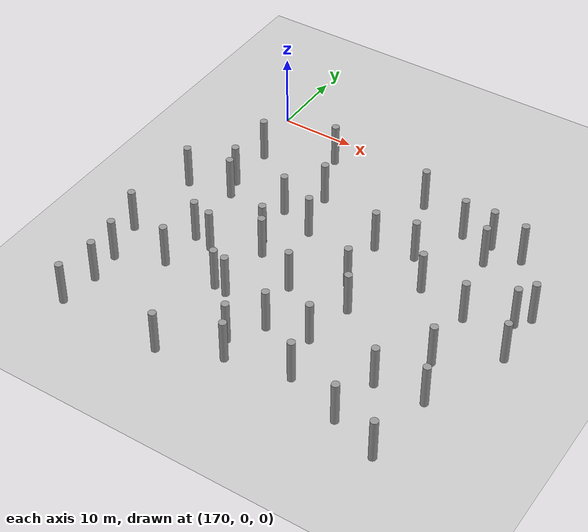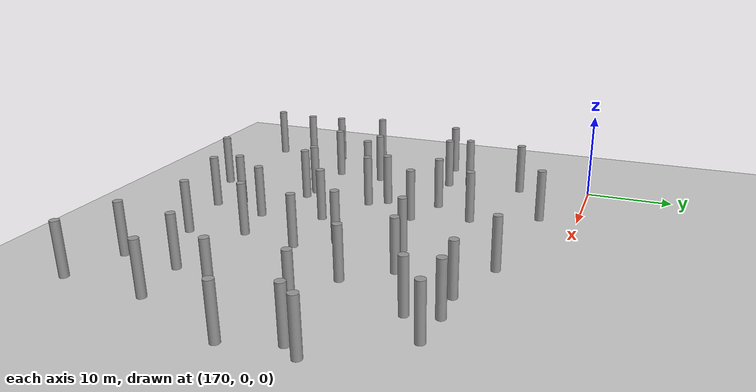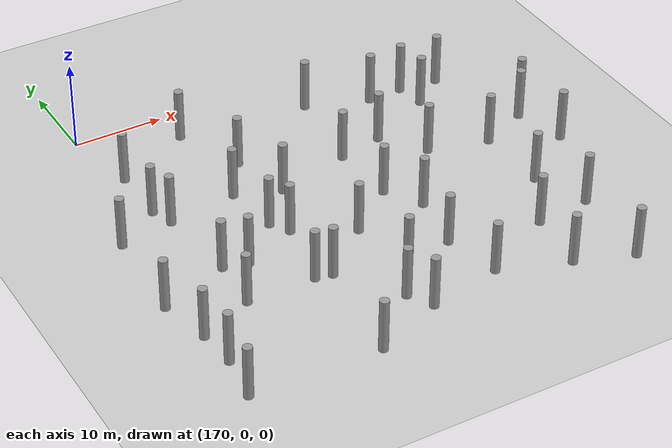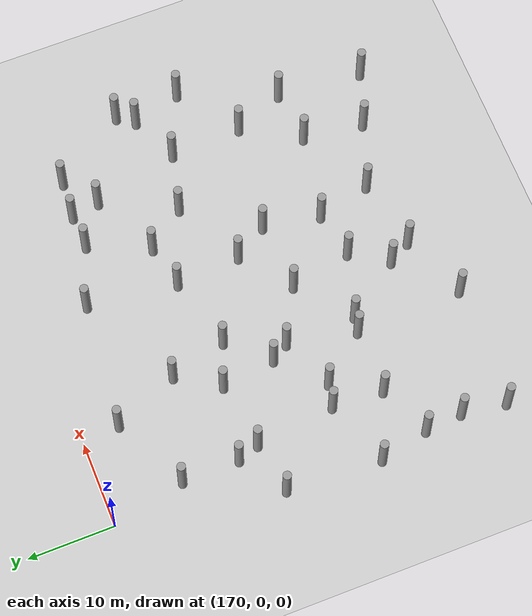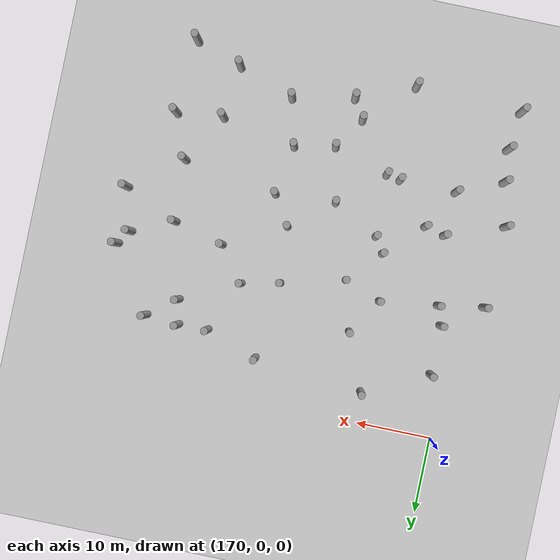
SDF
<sdf version="1.5">
 <world name="circle">
  <model name="ground">
   <static>1</static>
   <link name="link">
    <collision name="collision">
     <geometry><plane><normal>0 0 1</normal><size>100 100</size></plane></geometry>
     <surface><friction><ode><mu>100</mu><mu2>50</mu2></ode></friction></surface>
    </collision>
    <visual name="visual">
     <cast_shadows>0</cast_shadows>
     <geometry><plane><normal>0 0 1</normal><size>100 100</size></plane></geometry>
     <material>
      <script><uri>file://media/materials/scripts/gazebo.material</uri><name>Gazebo/Grey</name></script>
     </material>
    </visual>
    <velocity_decay><linear>0</linear><angular>0</angular></velocity_decay>
   </link>
  </model>
  <model name="unit_cylinder_264">
   <pose>167.184352577 -44.6945361858 3 3e-06 4e-06 -0</pose>
   <static>1</static>
   <self_collide>1</self_collide>
   <link name="link">
    <inertial>
     <mass>1</mass>
     <inertia><ixx>0.145833</ixx><ixy>0</ixy><ixz>0</ixz><iyy>0.145833</iyy><iyz>0</iyz><izz>0.125</izz></inertia>
    </inertial>
    <collision name="collision">
     <geometry><cylinder><radius>0.5</radius><length>6</length></cylinder></geometry>
    </collision>
    <visual name="visual">
     <geometry><cylinder><radius>0.5</radius><length>6</length></cylinder></geometry>
     <material>
      <script><name>Gazebo/Grey</name><uri>file://media/materials/scripts/gazebo.material</uri></script>
     </material>
    </visual>
    <collision name="cyl_collision">
     <geometry><cylinder><radius>0.5</radius><length>6</length></cylinder></geometry>
    </collision>
    <sensor name="my_contact" type="contact">
     <contact><collision>cyl_collision</collision></contact>
     <update_rate>5</update_rate>
    </sensor>
   </link>
  </model>
  <model name="unit_cylinder_265">
   <pose>167.48198191 -35.2077223789 3 3e-06 4e-06 -0</pose>
   <static>1</static>
   <self_collide>1</self_collide>
   <link name="link">
    <inertial>
     <mass>1</mass>
     <inertia><ixx>0.145833</ixx><ixy>0</ixy><ixz>0</ixz><iyy>0.145833</iyy><iyz>0</iyz><izz>0.125</izz></inertia>
    </inertial>
    <collision name="collision">
     <geometry><cylinder><radius>0.5</radius><length>6</length></cylinder></geometry>
    </collision>
    <visual name="visual">
     <geometry><cylinder><radius>0.5</radius><length>6</length></cylinder></geometry>
     <material>
      <script><name>Gazebo/Grey</name><uri>file://media/materials/scripts/gazebo.material</uri></script>
     </material>
    </visual>
    <collision name="cyl_collision">
     <geometry><cylinder><radius>0.5</radius><length>6</length></cylinder></geometry>
    </collision>
    <sensor name="my_contact" type="contact">
     <contact><collision>cyl_collision</collision></contact>
     <update_rate>5</update_rate>
    </sensor>
   </link>
  </model>
  <model name="unit_cylinder_266">
   <pose>166.164467386 -29.491058813 3 3e-06 4e-06 -0</pose>
   <static>1</static>
   <self_collide>1</self_collide>
   <link name="link">
    <inertial>
     <mass>1</mass>
     <inertia><ixx>0.145833</ixx><ixy>0</ixy><ixz>0</ixz><iyy>0.145833</iyy><iyz>0</iyz><izz>0.125</izz></inertia>
    </inertial>
    <collision name="collision">
     <geometry><cylinder><radius>0.5</radius><length>6</length></cylinder></geometry>
    </collision>
    <visual name="visual">
     <geometry><cylinder><radius>0.5</radius><length>6</length></cylinder></geometry>
     <material>
      <script><name>Gazebo/Grey</name><uri>file://media/materials/scripts/gazebo.material</uri></script>
     </material>
    </visual>
    <collision name="cyl_collision">
     <geometry><cylinder><radius>0.5</radius><length>6</length></cylinder></geometry>
    </collision>
    <sensor name="my_contact" type="contact">
     <contact><collision>cyl_collision</collision></contact>
     <update_rate>5</update_rate>
    </sensor>
   </link>
  </model>
  <model name="unit_cylinder_267">
   <pose>166.73927139 -18.5321926992 3 3e-06 4e-06 -0</pose>
   <static>1</static>
   <self_collide>1</self_collide>
   <link name="link">
    <inertial>
     <mass>1</mass>
     <inertia><ixx>0.145833</ixx><ixy>0</ixy><ixz>0</ixz><iyy>0.145833</iyy><iyz>0</iyz><izz>0.125</izz></inertia>
    </inertial>
    <collision name="collision">
     <geometry><cylinder><radius>0.5</radius><length>6</length></cylinder></geometry>
    </collision>
    <visual name="visual">
     <geometry><cylinder><radius>0.5</radius><length>6</length></cylinder></geometry>
     <material>
      <script><name>Gazebo/Grey</name><uri>file://media/materials/scripts/gazebo.material</uri></script>
     </material>
    </visual>
    <collision name="cyl_collision">
     <geometry><cylinder><radius>0.5</radius><length>6</length></cylinder></geometry>
    </collision>
    <sensor name="my_contact" type="contact">
     <contact><collision>cyl_collision</collision></contact>
     <update_rate>5</update_rate>
    </sensor>
   </link>
  </model>
  <model name="unit_cylinder_276">
   <pose>167.882365494 -39.5463847399 3 3e-06 4e-06 -0</pose>
   <static>1</static>
   <self_collide>1</self_collide>
   <link name="link">
    <inertial>
     <mass>1</mass>
     <inertia><ixx>0.145833</ixx><ixy>0</ixy><ixz>0</ixz><iyy>0.145833</iyy><iyz>0</iyz><izz>0.125</izz></inertia>
    </inertial>
    <collision name="collision">
     <geometry><cylinder><radius>0.5</radius><length>6</length></cylinder></geometry>
    </collision>
    <visual name="visual">
     <geometry><cylinder><radius>0.5</radius><length>6</length></cylinder></geometry>
     <material>
      <script><name>Gazebo/Grey</name><uri>file://media/materials/scripts/gazebo.material</uri></script>
     </material>
    </visual>
    <collision name="cyl_collision">
     <geometry><cylinder><radius>0.5</radius><length>6</length></cylinder></geometry>
    </collision>
    <sensor name="my_contact" type="contact">
     <contact><collision>cyl_collision</collision></contact>
     <update_rate>5</update_rate>
    </sensor>
   </link>
  </model>
  <model name="unit_cylinder_277">
   <pose>173.455146939 -32.6401161237 3 3e-06 4e-06 -0</pose>
   <static>1</static>
   <self_collide>1</self_collide>
   <link name="link">
    <inertial>
     <mass>1</mass>
     <inertia><ixx>0.145833</ixx><ixy>0</ixy><ixz>0</ixz><iyy>0.145833</iyy><iyz>0</iyz><izz>0.125</izz></inertia>
    </inertial>
    <collision name="collision">
     <geometry><cylinder><radius>0.5</radius><length>6</length></cylinder></geometry>
    </collision>
    <visual name="visual">
     <geometry><cylinder><radius>0.5</radius><length>6</length></cylinder></geometry>
     <material>
      <script><name>Gazebo/Grey</name><uri>file://media/materials/scripts/gazebo.material</uri></script>
     </material>
    </visual>
    <collision name="cyl_collision">
     <geometry><cylinder><radius>0.5</radius><length>6</length></cylinder></geometry>
    </collision>
    <sensor name="my_contact" type="contact">
     <contact><collision>cyl_collision</collision></contact>
     <update_rate>5</update_rate>
    </sensor>
   </link>
  </model>
  <model name="unit_cylinder_278">
   <pose>173.808090417 -26.7433858936 3 3e-06 4e-06 -0</pose>
   <static>1</static>
   <self_collide>1</self_collide>
   <link name="link">
    <inertial>
     <mass>1</mass>
     <inertia><ixx>0.145833</ixx><ixy>0</ixy><ixz>0</ixz><iyy>0.145833</iyy><iyz>0</iyz><izz>0.125</izz></inertia>
    </inertial>
    <collision name="collision">
     <geometry><cylinder><radius>0.5</radius><length>6</length></cylinder></geometry>
    </collision>
    <visual name="visual">
     <geometry><cylinder><radius>0.5</radius><length>6</length></cylinder></geometry>
     <material>
      <script><name>Gazebo/Grey</name><uri>file://media/materials/scripts/gazebo.material</uri></script>
     </material>
    </visual>
    <collision name="cyl_collision">
     <geometry><cylinder><radius>0.5</radius><length>6</length></cylinder></geometry>
    </collision>
    <sensor name="my_contact" type="contact">
     <contact><collision>cyl_collision</collision></contact>
     <update_rate>5</update_rate>
    </sensor>
   </link>
  </model>
  <model name="unit_cylinder_279">
   <pose>172.716616723 -17.5330724868 3 3e-06 4e-06 -0</pose>
   <static>1</static>
   <self_collide>1</self_collide>
   <link name="link">
    <inertial>
     <mass>1</mass>
     <inertia><ixx>0.145833</ixx><ixy>0</ixy><ixz>0</ixz><iyy>0.145833</iyy><iyz>0</iyz><izz>0.125</izz></inertia>
    </inertial>
    <collision name="collision">
     <geometry><cylinder><radius>0.5</radius><length>6</length></cylinder></geometry>
    </collision>
    <visual name="visual">
     <geometry><cylinder><radius>0.5</radius><length>6</length></cylinder></geometry>
     <material>
      <script><name>Gazebo/Grey</name><uri>file://media/materials/scripts/gazebo.material</uri></script>
     </material>
    </visual>
    <collision name="cyl_collision">
     <geometry><cylinder><radius>0.5</radius><length>6</length></cylinder></geometry>
    </collision>
    <sensor name="my_contact" type="contact">
     <contact><collision>cyl_collision</collision></contact>
     <update_rate>5</update_rate>
    </sensor>
   </link>
  </model>
  <model name="unit_cylinder_280">
   <pose>171.828920579 -15.0221314561 3 3e-06 4e-06 -0</pose>
   <static>1</static>
   <self_collide>1</self_collide>
   <link name="link">
    <inertial>
     <mass>1</mass>
     <inertia><ixx>0.145833</ixx><ixy>0</ixy><ixz>0</ixz><iyy>0.145833</iyy><iyz>0</iyz><izz>0.125</izz></inertia>
    </inertial>
    <collision name="collision">
     <geometry><cylinder><radius>0.5</radius><length>6</length></cylinder></geometry>
    </collision>
    <visual name="visual">
     <geometry><cylinder><radius>0.5</radius><length>6</length></cylinder></geometry>
     <material>
      <script><name>Gazebo/Grey</name><uri>file://media/materials/scripts/gazebo.material</uri></script>
     </material>
    </visual>
    <collision name="cyl_collision">
     <geometry><cylinder><radius>0.5</radius><length>6</length></cylinder></geometry>
    </collision>
    <sensor name="my_contact" type="contact">
     <contact><collision>cyl_collision</collision></contact>
     <update_rate>5</update_rate>
    </sensor>
   </link>
  </model>
  <model name="unit_cylinder_281">
   <pose>171.79893754 -8.42441752009 3 3e-06 4e-06 -0</pose>
   <static>1</static>
   <self_collide>1</self_collide>
   <link name="link">
    <inertial>
     <mass>1</mass>
     <inertia><ixx>0.145833</ixx><ixy>0</ixy><ixz>0</ixz><iyy>0.145833</iyy><iyz>0</iyz><izz>0.125</izz></inertia>
    </inertial>
    <collision name="collision">
     <geometry><cylinder><radius>0.5</radius><length>6</length></cylinder></geometry>
    </collision>
    <visual name="visual">
     <geometry><cylinder><radius>0.5</radius><length>6</length></cylinder></geometry>
     <material>
      <script><name>Gazebo/Grey</name><uri>file://media/materials/scripts/gazebo.material</uri></script>
     </material>
    </visual>
    <collision name="cyl_collision">
     <geometry><cylinder><radius>0.5</radius><length>6</length></cylinder></geometry>
    </collision>
    <sensor name="my_contact" type="contact">
     <contact><collision>cyl_collision</collision></contact>
     <update_rate>5</update_rate>
    </sensor>
   </link>
  </model>
  <model name="unit_cylinder_288">
   <pose>181.348324007 -45.1550946384 3 3e-06 4e-06 -0</pose>
   <static>1</static>
   <self_collide>1</self_collide>
   <link name="link">
    <inertial>
     <mass>1</mass>
     <inertia><ixx>0.145833</ixx><ixy>0</ixy><ixz>0</ixz><iyy>0.145833</iyy><iyz>0</iyz><izz>0.125</izz></inertia>
    </inertial>
    <collision name="collision">
     <geometry><cylinder><radius>0.5</radius><length>6</length></cylinder></geometry>
    </collision>
    <visual name="visual">
     <geometry><cylinder><radius>0.5</radius><length>6</length></cylinder></geometry>
     <material>
      <script><name>Gazebo/Grey</name><uri>file://media/materials/scripts/gazebo.material</uri></script>
     </material>
    </visual>
    <collision name="cyl_collision">
     <geometry><cylinder><radius>0.5</radius><length>6</length></cylinder></geometry>
    </collision>
    <sensor name="my_contact" type="contact">
     <contact><collision>cyl_collision</collision></contact>
     <update_rate>5</update_rate>
    </sensor>
   </link>
  </model>
  <model name="unit_cylinder_289">
   <pose>180.984506295 -32.7109083714 3 3e-06 4e-06 -0</pose>
   <static>1</static>
   <self_collide>1</self_collide>
   <link name="link">
    <inertial>
     <mass>1</mass>
     <inertia><ixx>0.145833</ixx><ixy>0</ixy><ixz>0</ixz><iyy>0.145833</iyy><iyz>0</iyz><izz>0.125</izz></inertia>
    </inertial>
    <collision name="collision">
     <geometry><cylinder><radius>0.5</radius><length>6</length></cylinder></geometry>
    </collision>
    <visual name="visual">
     <geometry><cylinder><radius>0.5</radius><length>6</length></cylinder></geometry>
     <material>
      <script><name>Gazebo/Grey</name><uri>file://media/materials/scripts/gazebo.material</uri></script>
     </material>
    </visual>
    <collision name="cyl_collision">
     <geometry><cylinder><radius>0.5</radius><length>6</length></cylinder></geometry>
    </collision>
    <sensor name="my_contact" type="contact">
     <contact><collision>cyl_collision</collision></contact>
     <update_rate>5</update_rate>
    </sensor>
   </link>
  </model>
  <model name="unit_cylinder_290">
   <pose>176.479871621 -27.3866833121 3 3e-06 4e-06 -0</pose>
   <static>1</static>
   <self_collide>1</self_collide>
   <link name="link">
    <inertial>
     <mass>1</mass>
     <inertia><ixx>0.145833</ixx><ixy>0</ixy><ixz>0</ixz><iyy>0.145833</iyy><iyz>0</iyz><izz>0.125</izz></inertia>
    </inertial>
    <collision name="collision">
     <geometry><cylinder><radius>0.5</radius><length>6</length></cylinder></geometry>
    </collision>
    <visual name="visual">
     <geometry><cylinder><radius>0.5</radius><length>6</length></cylinder></geometry>
     <material>
      <script><name>Gazebo/Grey</name><uri>file://media/materials/scripts/gazebo.material</uri></script>
     </material>
    </visual>
    <collision name="cyl_collision">
     <geometry><cylinder><radius>0.5</radius><length>6</length></cylinder></geometry>
    </collision>
    <sensor name="my_contact" type="contact">
     <contact><collision>cyl_collision</collision></contact>
     <update_rate>5</update_rate>
    </sensor>
   </link>
  </model>
  <model name="unit_cylinder_291">
   <pose>181.271500907 -22.7650270333 3 3e-06 4e-06 -0</pose>
   <static>1</static>
   <self_collide>1</self_collide>
   <link name="link">
    <inertial>
     <mass>1</mass>
     <inertia><ixx>0.145833</ixx><ixy>0</ixy><ixz>0</ixz><iyy>0.145833</iyy><iyz>0</iyz><izz>0.125</izz></inertia>
    </inertial>
    <collision name="collision">
     <geometry><cylinder><radius>0.5</radius><length>6</length></cylinder></geometry>
    </collision>
    <visual name="visual">
     <geometry><cylinder><radius>0.5</radius><length>6</length></cylinder></geometry>
     <material>
      <script><name>Gazebo/Grey</name><uri>file://media/materials/scripts/gazebo.material</uri></script>
     </material>
    </visual>
    <collision name="cyl_collision">
     <geometry><cylinder><radius>0.5</radius><length>6</length></cylinder></geometry>
    </collision>
    <sensor name="my_contact" type="contact">
     <contact><collision>cyl_collision</collision></contact>
     <update_rate>5</update_rate>
    </sensor>
   </link>
  </model>
  <model name="unit_cylinder_292">
   <pose>180.403036266 -16.5180069834 3 3e-06 4e-06 -0</pose>
   <static>1</static>
   <self_collide>1</self_collide>
   <link name="link">
    <inertial>
     <mass>1</mass>
     <inertia><ixx>0.145833</ixx><ixy>0</ixy><ixz>0</ixz><iyy>0.145833</iyy><iyz>0</iyz><izz>0.125</izz></inertia>
    </inertial>
    <collision name="collision">
     <geometry><cylinder><radius>0.5</radius><length>6</length></cylinder></geometry>
    </collision>
    <visual name="visual">
     <geometry><cylinder><radius>0.5</radius><length>6</length></cylinder></geometry>
     <material>
      <script><name>Gazebo/Grey</name><uri>file://media/materials/scripts/gazebo.material</uri></script>
     </material>
    </visual>
    <collision name="cyl_collision">
     <geometry><cylinder><radius>0.5</radius><length>6</length></cylinder></geometry>
    </collision>
    <sensor name="my_contact" type="contact">
     <contact><collision>cyl_collision</collision></contact>
     <update_rate>5</update_rate>
    </sensor>
   </link>
  </model>
  <model name="unit_cylinder_293">
   <pose>180.369370591 -4.26929964001 3 3e-06 4e-06 -0</pose>
   <static>1</static>
   <self_collide>1</self_collide>
   <link name="link">
    <inertial>
     <mass>1</mass>
     <inertia><ixx>0.145833</ixx><ixy>0</ixy><ixz>0</ixz><iyy>0.145833</iyy><iyz>0</iyz><izz>0.125</izz></inertia>
    </inertial>
    <collision name="collision">
     <geometry><cylinder><radius>0.5</radius><length>6</length></cylinder></geometry>
    </collision>
    <visual name="visual">
     <geometry><cylinder><radius>0.5</radius><length>6</length></cylinder></geometry>
     <material>
      <script><name>Gazebo/Grey</name><uri>file://media/materials/scripts/gazebo.material</uri></script>
     </material>
    </visual>
    <collision name="cyl_collision">
     <geometry><cylinder><radius>0.5</radius><length>6</length></cylinder></geometry>
    </collision>
    <sensor name="my_contact" type="contact">
     <contact><collision>cyl_collision</collision></contact>
     <update_rate>5</update_rate>
    </sensor>
   </link>
  </model>
  <model name="unit_cylinder_300">
   <pose>187.438491428 -39.4466724549 3 3e-06 4e-06 -0</pose>
   <static>1</static>
   <self_collide>1</self_collide>
   <link name="link">
    <inertial>
     <mass>1</mass>
     <inertia><ixx>0.145833</ixx><ixy>0</ixy><ixz>0</ixz><iyy>0.145833</iyy><iyz>0</iyz><izz>0.125</izz></inertia>
    </inertial>
    <collision name="collision">
     <geometry><cylinder><radius>0.5</radius><length>6</length></cylinder></geometry>
    </collision>
    <visual name="visual">
     <geometry><cylinder><radius>0.5</radius><length>6</length></cylinder></geometry>
     <material>
      <script><name>Gazebo/Grey</name><uri>file://media/materials/scripts/gazebo.material</uri></script>
     </material>
    </visual>
    <collision name="cyl_collision">
     <geometry><cylinder><radius>0.5</radius><length>6</length></cylinder></geometry>
    </collision>
    <sensor name="my_contact" type="contact">
     <contact><collision>cyl_collision</collision></contact>
     <update_rate>5</update_rate>
    </sensor>
   </link>
  </model>
  <model name="unit_cylinder_301">
   <pose>182.819839434 -33.0667826066 3 3e-06 4e-06 -0</pose>
   <static>1</static>
   <self_collide>1</self_collide>
   <link name="link">
    <inertial>
     <mass>1</mass>
     <inertia><ixx>0.145833</ixx><ixy>0</ixy><ixz>0</ixz><iyy>0.145833</iyy><iyz>0</iyz><izz>0.125</izz></inertia>
    </inertial>
    <collision name="collision">
     <geometry><cylinder><radius>0.5</radius><length>6</length></cylinder></geometry>
    </collision>
    <visual name="visual">
     <geometry><cylinder><radius>0.5</radius><length>6</length></cylinder></geometry>
     <material>
      <script><name>Gazebo/Grey</name><uri>file://media/materials/scripts/gazebo.material</uri></script>
     </material>
    </visual>
    <collision name="cyl_collision">
     <geometry><cylinder><radius>0.5</radius><length>6</length></cylinder></geometry>
    </collision>
    <sensor name="my_contact" type="contact">
     <contact><collision>cyl_collision</collision></contact>
     <update_rate>5</update_rate>
    </sensor>
   </link>
  </model>
  <model name="unit_cylinder_302">
   <pose>182.56073356 -24.8071885822 3 3e-06 4e-06 -0</pose>
   <static>1</static>
   <self_collide>1</self_collide>
   <link name="link">
    <inertial>
     <mass>1</mass>
     <inertia><ixx>0.145833</ixx><ixy>0</ixy><ixz>0</ixz><iyy>0.145833</iyy><iyz>0</iyz><izz>0.125</izz></inertia>
    </inertial>
    <collision name="collision">
     <geometry><cylinder><radius>0.5</radius><length>6</length></cylinder></geometry>
    </collision>
    <visual name="visual">
     <geometry><cylinder><radius>0.5</radius><length>6</length></cylinder></geometry>
     <material>
      <script><name>Gazebo/Grey</name><uri>file://media/materials/scripts/gazebo.material</uri></script>
     </material>
    </visual>
    <collision name="cyl_collision">
     <geometry><cylinder><radius>0.5</radius><length>6</length></cylinder></geometry>
    </collision>
    <sensor name="my_contact" type="contact">
     <contact><collision>cyl_collision</collision></contact>
     <update_rate>5</update_rate>
    </sensor>
   </link>
  </model>
  <model name="unit_cylinder_303">
   <pose>185.286652514 -18.3646767931 3 3e-06 4e-06 -0</pose>
   <static>1</static>
   <self_collide>1</self_collide>
   <link name="link">
    <inertial>
     <mass>1</mass>
     <inertia><ixx>0.145833</ixx><ixy>0</ixy><ixz>0</ixz><iyy>0.145833</iyy><iyz>0</iyz><izz>0.125</izz></inertia>
    </inertial>
    <collision name="collision">
     <geometry><cylinder><radius>0.5</radius><length>6</length></cylinder></geometry>
    </collision>
    <visual name="visual">
     <geometry><cylinder><radius>0.5</radius><length>6</length></cylinder></geometry>
     <material>
      <script><name>Gazebo/Grey</name><uri>file://media/materials/scripts/gazebo.material</uri></script>
     </material>
    </visual>
    <collision name="cyl_collision">
     <geometry><cylinder><radius>0.5</radius><length>6</length></cylinder></geometry>
    </collision>
    <sensor name="my_contact" type="contact">
     <contact><collision>cyl_collision</collision></contact>
     <update_rate>5</update_rate>
    </sensor>
   </link>
  </model>
  <model name="unit_cylinder_304">
   <pose>183.481781696 -11.7642771939 3 3e-06 4e-06 -0</pose>
   <static>1</static>
   <self_collide>1</self_collide>
   <link name="link">
    <inertial>
     <mass>1</mass>
     <inertia><ixx>0.145833</ixx><ixy>0</ixy><ixz>0</ixz><iyy>0.145833</iyy><iyz>0</iyz><izz>0.125</izz></inertia>
    </inertial>
    <collision name="collision">
     <geometry><cylinder><radius>0.5</radius><length>6</length></cylinder></geometry>
    </collision>
    <visual name="visual">
     <geometry><cylinder><radius>0.5</radius><length>6</length></cylinder></geometry>
     <material>
      <script><name>Gazebo/Grey</name><uri>file://media/materials/scripts/gazebo.material</uri></script>
     </material>
    </visual>
    <collision name="cyl_collision">
     <geometry><cylinder><radius>0.5</radius><length>6</length></cylinder></geometry>
    </collision>
    <sensor name="my_contact" type="contact">
     <contact><collision>cyl_collision</collision></contact>
     <update_rate>5</update_rate>
    </sensor>
   </link>
  </model>
  <model name="unit_cylinder_312">
   <pose>188.947680341 -42.0619158337 3 3e-06 4e-06 -0</pose>
   <static>1</static>
   <self_collide>1</self_collide>
   <link name="link">
    <inertial>
     <mass>1</mass>
     <inertia><ixx>0.145833</ixx><ixy>0</ixy><ixz>0</ixz><iyy>0.145833</iyy><iyz>0</iyz><izz>0.125</izz></inertia>
    </inertial>
    <collision name="collision">
     <geometry><cylinder><radius>0.5</radius><length>6</length></cylinder></geometry>
    </collision>
    <visual name="visual">
     <geometry><cylinder><radius>0.5</radius><length>6</length></cylinder></geometry>
     <material>
      <script><name>Gazebo/Grey</name><uri>file://media/materials/scripts/gazebo.material</uri></script>
     </material>
    </visual>
    <collision name="cyl_collision">
     <geometry><cylinder><radius>0.5</radius><length>6</length></cylinder></geometry>
    </collision>
    <sensor name="my_contact" type="contact">
     <contact><collision>cyl_collision</collision></contact>
     <update_rate>5</update_rate>
    </sensor>
   </link>
  </model>
  <model name="unit_cylinder_313">
   <pose>190.168326244 -35.2474116359 3 3e-06 4e-06 -0</pose>
   <static>1</static>
   <self_collide>1</self_collide>
   <link name="link">
    <inertial>
     <mass>1</mass>
     <inertia><ixx>0.145833</ixx><ixy>0</ixy><ixz>0</ixz><iyy>0.145833</iyy><iyz>0</iyz><izz>0.125</izz></inertia>
    </inertial>
    <collision name="collision">
     <geometry><cylinder><radius>0.5</radius><length>6</length></cylinder></geometry>
    </collision>
    <visual name="visual">
     <geometry><cylinder><radius>0.5</radius><length>6</length></cylinder></geometry>
     <material>
      <script><name>Gazebo/Grey</name><uri>file://media/materials/scripts/gazebo.material</uri></script>
     </material>
    </visual>
    <collision name="cyl_collision">
     <geometry><cylinder><radius>0.5</radius><length>6</length></cylinder></geometry>
    </collision>
    <sensor name="my_contact" type="contact">
     <contact><collision>cyl_collision</collision></contact>
     <update_rate>5</update_rate>
    </sensor>
   </link>
  </model>
  <model name="unit_cylinder_314">
   <pose>188.68494567 -28.1014974663 3 3e-06 4e-06 -0</pose>
   <static>1</static>
   <self_collide>1</self_collide>
   <link name="link">
    <inertial>
     <mass>1</mass>
     <inertia><ixx>0.145833</ixx><ixy>0</ixy><ixz>0</ixz><iyy>0.145833</iyy><iyz>0</iyz><izz>0.125</izz></inertia>
    </inertial>
    <collision name="collision">
     <geometry><cylinder><radius>0.5</radius><length>6</length></cylinder></geometry>
    </collision>
    <visual name="visual">
     <geometry><cylinder><radius>0.5</radius><length>6</length></cylinder></geometry>
     <material>
      <script><name>Gazebo/Grey</name><uri>file://media/materials/scripts/gazebo.material</uri></script>
     </material>
    </visual>
    <collision name="cyl_collision">
     <geometry><cylinder><radius>0.5</radius><length>6</length></cylinder></geometry>
    </collision>
    <sensor name="my_contact" type="contact">
     <contact><collision>cyl_collision</collision></contact>
     <update_rate>5</update_rate>
    </sensor>
   </link>
  </model>
  <model name="unit_cylinder_315">
   <pose>194.267259797 -23.6795991681 3 3e-06 4e-06 -0</pose>
   <static>1</static>
   <self_collide>1</self_collide>
   <link name="link">
    <inertial>
     <mass>1</mass>
     <inertia><ixx>0.145833</ixx><ixy>0</ixy><ixz>0</ixz><iyy>0.145833</iyy><iyz>0</iyz><izz>0.125</izz></inertia>
    </inertial>
    <collision name="collision">
     <geometry><cylinder><radius>0.5</radius><length>6</length></cylinder></geometry>
    </collision>
    <visual name="visual">
     <geometry><cylinder><radius>0.5</radius><length>6</length></cylinder></geometry>
     <material>
      <script><name>Gazebo/Grey</name><uri>file://media/materials/scripts/gazebo.material</uri></script>
     </material>
    </visual>
    <collision name="cyl_collision">
     <geometry><cylinder><radius>0.5</radius><length>6</length></cylinder></geometry>
    </collision>
    <sensor name="my_contact" type="contact">
     <contact><collision>cyl_collision</collision></contact>
     <update_rate>5</update_rate>
    </sensor>
   </link>
  </model>
  <model name="unit_cylinder_316">
   <pose>193.682064256 -16.2007967189 3 3e-06 4e-06 -0</pose>
   <static>1</static>
   <self_collide>1</self_collide>
   <link name="link">
    <inertial>
     <mass>1</mass>
     <inertia><ixx>0.145833</ixx><ixy>0</ixy><ixz>0</ixz><iyy>0.145833</iyy><iyz>0</iyz><izz>0.125</izz></inertia>
    </inertial>
    <collision name="collision">
     <geometry><cylinder><radius>0.5</radius><length>6</length></cylinder></geometry>
    </collision>
    <visual name="visual">
     <geometry><cylinder><radius>0.5</radius><length>6</length></cylinder></geometry>
     <material>
      <script><name>Gazebo/Grey</name><uri>file://media/materials/scripts/gazebo.material</uri></script>
     </material>
    </visual>
    <collision name="cyl_collision">
     <geometry><cylinder><radius>0.5</radius><length>6</length></cylinder></geometry>
    </collision>
    <sensor name="my_contact" type="contact">
     <contact><collision>cyl_collision</collision></contact>
     <update_rate>5</update_rate>
    </sensor>
   </link>
  </model>
  <model name="unit_cylinder_317">
   <pose>194.916152978 -5.83414354777 3 3e-06 4e-06 -0</pose>
   <static>1</static>
   <self_collide>1</self_collide>
   <link name="link">
    <inertial>
     <mass>1</mass>
     <inertia><ixx>0.145833</ixx><ixy>0</ixy><ixz>0</ixz><iyy>0.145833</iyy><iyz>0</iyz><izz>0.125</izz></inertia>
    </inertial>
    <collision name="collision">
     <geometry><cylinder><radius>0.5</radius><length>6</length></cylinder></geometry>
    </collision>
    <visual name="visual">
     <geometry><cylinder><radius>0.5</radius><length>6</length></cylinder></geometry>
     <material>
      <script><name>Gazebo/Grey</name><uri>file://media/materials/scripts/gazebo.material</uri></script>
     </material>
    </visual>
    <collision name="cyl_collision">
     <geometry><cylinder><radius>0.5</radius><length>6</length></cylinder></geometry>
    </collision>
    <sensor name="my_contact" type="contact">
     <contact><collision>cyl_collision</collision></contact>
     <update_rate>5</update_rate>
    </sensor>
   </link>
  </model>
  <model name="unit_cylinder_324">
   <pose>197.126299697 -40.4195015254 3 3e-06 4e-06 -0</pose>
   <static>1</static>
   <self_collide>1</self_collide>
   <link name="link">
    <inertial>
     <mass>1</mass>
     <inertia><ixx>0.145833</ixx><ixy>0</ixy><ixz>0</ixz><iyy>0.145833</iyy><iyz>0</iyz><izz>0.125</izz></inertia>
    </inertial>
    <collision name="collision">
     <geometry><cylinder><radius>0.5</radius><length>6</length></cylinder></geometry>
    </collision>
    <visual name="visual">
     <geometry><cylinder><radius>0.5</radius><length>6</length></cylinder></geometry>
     <material>
      <script><name>Gazebo/Grey</name><uri>file://media/materials/scripts/gazebo.material</uri></script>
     </material>
    </visual>
    <collision name="cyl_collision">
     <geometry><cylinder><radius>0.5</radius><length>6</length></cylinder></geometry>
    </collision>
    <sensor name="my_contact" type="contact">
     <contact><collision>cyl_collision</collision></contact>
     <update_rate>5</update_rate>
    </sensor>
   </link>
  </model>
  <model name="unit_cylinder_325">
   <pose>195.571231735 -34.2183294583 3 3e-06 4e-06 -0</pose>
   <static>1</static>
   <self_collide>1</self_collide>
   <link name="link">
    <inertial>
     <mass>1</mass>
     <inertia><ixx>0.145833</ixx><ixy>0</ixy><ixz>0</ixz><iyy>0.145833</iyy><iyz>0</iyz><izz>0.125</izz></inertia>
    </inertial>
    <collision name="collision">
     <geometry><cylinder><radius>0.5</radius><length>6</length></cylinder></geometry>
    </collision>
    <visual name="visual">
     <geometry><cylinder><radius>0.5</radius><length>6</length></cylinder></geometry>
     <material>
      <script><name>Gazebo/Grey</name><uri>file://media/materials/scripts/gazebo.material</uri></script>
     </material>
    </visual>
    <collision name="cyl_collision">
     <geometry><cylinder><radius>0.5</radius><length>6</length></cylinder></geometry>
    </collision>
    <sensor name="my_contact" type="contact">
     <contact><collision>cyl_collision</collision></contact>
     <update_rate>5</update_rate>
    </sensor>
   </link>
  </model>
  <model name="unit_cylinder_326">
   <pose>196.708027651 -27.5850914081 3 3e-06 4e-06 -0</pose>
   <static>1</static>
   <self_collide>1</self_collide>
   <link name="link">
    <inertial>
     <mass>1</mass>
     <inertia><ixx>0.145833</ixx><ixy>0</ixy><ixz>0</ixz><iyy>0.145833</iyy><iyz>0</iyz><izz>0.125</izz></inertia>
    </inertial>
    <collision name="collision">
     <geometry><cylinder><radius>0.5</radius><length>6</length></cylinder></geometry>
    </collision>
    <visual name="visual">
     <geometry><cylinder><radius>0.5</radius><length>6</length></cylinder></geometry>
     <material>
      <script><name>Gazebo/Grey</name><uri>file://media/materials/scripts/gazebo.material</uri></script>
     </material>
    </visual>
    <collision name="cyl_collision">
     <geometry><cylinder><radius>0.5</radius><length>6</length></cylinder></geometry>
    </collision>
    <sensor name="my_contact" type="contact">
     <contact><collision>cyl_collision</collision></contact>
     <update_rate>5</update_rate>
    </sensor>
   </link>
  </model>
  <model name="unit_cylinder_327">
   <pose>202.251985702 -19.6097663447 3 3e-06 4e-06 -0</pose>
   <static>1</static>
   <self_collide>1</self_collide>
   <link name="link">
    <inertial>
     <mass>1</mass>
     <inertia><ixx>0.145833</ixx><ixy>0</ixy><ixz>0</ixz><iyy>0.145833</iyy><iyz>0</iyz><izz>0.125</izz></inertia>
    </inertial>
    <collision name="collision">
     <geometry><cylinder><radius>0.5</radius><length>6</length></cylinder></geometry>
    </collision>
    <visual name="visual">
     <geometry><cylinder><radius>0.5</radius><length>6</length></cylinder></geometry>
     <material>
      <script><name>Gazebo/Grey</name><uri>file://media/materials/scripts/gazebo.material</uri></script>
     </material>
    </visual>
    <collision name="cyl_collision">
     <geometry><cylinder><radius>0.5</radius><length>6</length></cylinder></geometry>
    </collision>
    <sensor name="my_contact" type="contact">
     <contact><collision>cyl_collision</collision></contact>
     <update_rate>5</update_rate>
    </sensor>
   </link>
  </model>
  <model name="unit_cylinder_328">
   <pose>198.753517931 -15.1108377127 3 3e-06 4e-06 -0</pose>
   <static>1</static>
   <self_collide>1</self_collide>
   <link name="link">
    <inertial>
     <mass>1</mass>
     <inertia><ixx>0.145833</ixx><ixy>0</ixy><ixz>0</ixz><iyy>0.145833</iyy><iyz>0</iyz><izz>0.125</izz></inertia>
    </inertial>
    <collision name="collision">
     <geometry><cylinder><radius>0.5</radius><length>6</length></cylinder></geometry>
    </collision>
    <visual name="visual">
     <geometry><cylinder><radius>0.5</radius><length>6</length></cylinder></geometry>
     <material>
      <script><name>Gazebo/Grey</name><uri>file://media/materials/scripts/gazebo.material</uri></script>
     </material>
    </visual>
    <collision name="cyl_collision">
     <geometry><cylinder><radius>0.5</radius><length>6</length></cylinder></geometry>
    </collision>
    <sensor name="my_contact" type="contact">
     <contact><collision>cyl_collision</collision></contact>
     <update_rate>5</update_rate>
    </sensor>
   </link>
  </model>
  <model name="unit_cylinder_329">
   <pose>201.820454951 -8.21816786905 3 3e-06 4e-06 -0</pose>
   <static>1</static>
   <self_collide>1</self_collide>
   <link name="link">
    <inertial>
     <mass>1</mass>
     <inertia><ixx>0.145833</ixx><ixy>0</ixy><ixz>0</ixz><iyy>0.145833</iyy><iyz>0</iyz><izz>0.125</izz></inertia>
    </inertial>
    <collision name="collision">
     <geometry><cylinder><radius>0.5</radius><length>6</length></cylinder></geometry>
    </collision>
    <visual name="visual">
     <geometry><cylinder><radius>0.5</radius><length>6</length></cylinder></geometry>
     <material>
      <script><name>Gazebo/Grey</name><uri>file://media/materials/scripts/gazebo.material</uri></script>
     </material>
    </visual>
    <collision name="cyl_collision">
     <geometry><cylinder><radius>0.5</radius><length>6</length></cylinder></geometry>
    </collision>
    <sensor name="my_contact" type="contact">
     <contact><collision>cyl_collision</collision></contact>
     <update_rate>5</update_rate>
    </sensor>
   </link>
  </model>
  <model name="unit_cylinder_336">
   <pose>204.60468578 -43.0945034612 3 3e-06 4e-06 -0</pose>
   <static>1</static>
   <self_collide>1</self_collide>
   <link name="link">
    <inertial>
     <mass>1</mass>
     <inertia><ixx>0.145833</ixx><ixy>0</ixy><ixz>0</ixz><iyy>0.145833</iyy><iyz>0</iyz><izz>0.125</izz></inertia>
    </inertial>
    <collision name="collision">
     <geometry><cylinder><radius>0.5</radius><length>6</length></cylinder></geometry>
    </collision>
    <visual name="visual">
     <geometry><cylinder><radius>0.5</radius><length>6</length></cylinder></geometry>
     <material>
      <script><name>Gazebo/Grey</name><uri>file://media/materials/scripts/gazebo.material</uri></script>
     </material>
    </visual>
    <collision name="cyl_collision">
     <geometry><cylinder><radius>0.5</radius><length>6</length></cylinder></geometry>
    </collision>
    <sensor name="my_contact" type="contact">
     <contact><collision>cyl_collision</collision></contact>
     <update_rate>5</update_rate>
    </sensor>
   </link>
  </model>
  <model name="unit_cylinder_337">
   <pose>205.441480802 -36.0736267423 3 3e-06 4e-06 -0</pose>
   <static>1</static>
   <self_collide>1</self_collide>
   <link name="link">
    <inertial>
     <mass>1</mass>
     <inertia><ixx>0.145833</ixx><ixy>0</ixy><ixz>0</ixz><iyy>0.145833</iyy><iyz>0</iyz><izz>0.125</izz></inertia>
    </inertial>
    <collision name="collision">
     <geometry><cylinder><radius>0.5</radius><length>6</length></cylinder></geometry>
    </collision>
    <visual name="visual">
     <geometry><cylinder><radius>0.5</radius><length>6</length></cylinder></geometry>
     <material>
      <script><name>Gazebo/Grey</name><uri>file://media/materials/scripts/gazebo.material</uri></script>
     </material>
    </visual>
    <collision name="cyl_collision">
     <geometry><cylinder><radius>0.5</radius><length>6</length></cylinder></geometry>
    </collision>
    <sensor name="my_contact" type="contact">
     <contact><collision>cyl_collision</collision></contact>
     <update_rate>5</update_rate>
    </sensor>
   </link>
  </model>
  <model name="unit_cylinder_338">
   <pose>209.253370672 -29.6033834912 3 3e-06 4e-06 -0</pose>
   <static>1</static>
   <self_collide>1</self_collide>
   <link name="link">
    <inertial>
     <mass>1</mass>
     <inertia><ixx>0.145833</ixx><ixy>0</ixy><ixz>0</ixz><iyy>0.145833</iyy><iyz>0</iyz><izz>0.125</izz></inertia>
    </inertial>
    <collision name="collision">
     <geometry><cylinder><radius>0.5</radius><length>6</length></cylinder></geometry>
    </collision>
    <visual name="visual">
     <geometry><cylinder><radius>0.5</radius><length>6</length></cylinder></geometry>
     <material>
      <script><name>Gazebo/Grey</name><uri>file://media/materials/scripts/gazebo.material</uri></script>
     </material>
    </visual>
    <collision name="cyl_collision">
     <geometry><cylinder><radius>0.5</radius><length>6</length></cylinder></geometry>
    </collision>
    <sensor name="my_contact" type="contact">
     <contact><collision>cyl_collision</collision></contact>
     <update_rate>5</update_rate>
    </sensor>
   </link>
  </model>
  <model name="unit_cylinder_339">
   <pose>208.900769636 -21.342437582 3 3e-06 4e-06 -0</pose>
   <static>1</static>
   <self_collide>1</self_collide>
   <link name="link">
    <inertial>
     <mass>1</mass>
     <inertia><ixx>0.145833</ixx><ixy>0</ixy><ixz>0</ixz><iyy>0.145833</iyy><iyz>0</iyz><izz>0.125</izz></inertia>
    </inertial>
    <collision name="collision">
     <geometry><cylinder><radius>0.5</radius><length>6</length></cylinder></geometry>
    </collision>
    <visual name="visual">
     <geometry><cylinder><radius>0.5</radius><length>6</length></cylinder></geometry>
     <material>
      <script><name>Gazebo/Grey</name><uri>file://media/materials/scripts/gazebo.material</uri></script>
     </material>
    </visual>
    <collision name="cyl_collision">
     <geometry><cylinder><radius>0.5</radius><length>6</length></cylinder></geometry>
    </collision>
    <sensor name="my_contact" type="contact">
     <contact><collision>cyl_collision</collision></contact>
     <update_rate>5</update_rate>
    </sensor>
   </link>
  </model>
  <model name="unit_cylinder_340">
   <pose>206.405497633 -11.3616295232 3 3e-06 4e-06 -0</pose>
   <static>1</static>
   <self_collide>1</self_collide>
   <link name="link">
    <inertial>
     <mass>1</mass>
     <inertia><ixx>0.145833</ixx><ixy>0</ixy><ixz>0</ixz><iyy>0.145833</iyy><iyz>0</iyz><izz>0.125</izz></inertia>
    </inertial>
    <collision name="collision">
     <geometry><cylinder><radius>0.5</radius><length>6</length></cylinder></geometry>
    </collision>
    <visual name="visual">
     <geometry><cylinder><radius>0.5</radius><length>6</length></cylinder></geometry>
     <material>
      <script><name>Gazebo/Grey</name><uri>file://media/materials/scripts/gazebo.material</uri></script>
     </material>
    </visual>
    <collision name="cyl_collision">
     <geometry><cylinder><radius>0.5</radius><length>6</length></cylinder></geometry>
    </collision>
    <sensor name="my_contact" type="contact">
     <contact><collision>cyl_collision</collision></contact>
     <update_rate>5</update_rate>
    </sensor>
   </link>
  </model>
  <model name="unit_cylinder_341">
   <pose>205.778656233 -8.08759458973 3 3e-06 4e-06 -0</pose>
   <static>1</static>
   <self_collide>1</self_collide>
   <link name="link">
    <inertial>
     <mass>1</mass>
     <inertia><ixx>0.145833</ixx><ixy>0</ixy><ixz>0</ixz><iyy>0.145833</iyy><iyz>0</iyz><izz>0.125</izz></inertia>
    </inertial>
    <collision name="collision">
     <geometry><cylinder><radius>0.5</radius><length>6</length></cylinder></geometry>
    </collision>
    <visual name="visual">
     <geometry><cylinder><radius>0.5</radius><length>6</length></cylinder></geometry>
     <material>
      <script><name>Gazebo/Grey</name><uri>file://media/materials/scripts/gazebo.material</uri></script>
     </material>
    </visual>
    <collision name="cyl_collision">
     <geometry><cylinder><radius>0.5</radius><length>6</length></cylinder></geometry>
    </collision>
    <sensor name="my_contact" type="contact">
     <contact><collision>cyl_collision</collision></contact>
     <update_rate>5</update_rate>
    </sensor>
   </link>
  </model>
  <model name="unit_cylinder_348">
   <pose>210.806513523 -45.3061057204 3 3e-06 4e-06 -0</pose>
   <static>1</static>
   <self_collide>1</self_collide>
   <link name="link">
    <inertial>
     <mass>1</mass>
     <inertia><ixx>0.145833</ixx><ixy>0</ixy><ixz>0</ixz><iyy>0.145833</iyy><iyz>0</iyz><izz>0.125</izz></inertia>
    </inertial>
    <collision name="collision">
     <geometry><cylinder><radius>0.5</radius><length>6</length></cylinder></geometry>
    </collision>
    <visual name="visual">
     <geometry><cylinder><radius>0.5</radius><length>6</length></cylinder></geometry>
     <material>
      <script><name>Gazebo/Grey</name><uri>file://media/materials/scripts/gazebo.material</uri></script>
     </material>
    </visual>
    <collision name="cyl_collision">
     <geometry><cylinder><radius>0.5</radius><length>6</length></cylinder></geometry>
    </collision>
    <sensor name="my_contact" type="contact">
     <contact><collision>cyl_collision</collision></contact>
     <update_rate>5</update_rate>
    </sensor>
   </link>
  </model>
  <model name="unit_cylinder_349">
   <pose>211.633004745 -35.4310670468 3 3e-06 4e-06 -0</pose>
   <static>1</static>
   <self_collide>1</self_collide>
   <link name="link">
    <inertial>
     <mass>1</mass>
     <inertia><ixx>0.145833</ixx><ixy>0</ixy><ixz>0</ixz><iyy>0.145833</iyy><iyz>0</iyz><izz>0.125</izz></inertia>
    </inertial>
    <collision name="collision">
     <geometry><cylinder><radius>0.5</radius><length>6</length></cylinder></geometry>
    </collision>
    <visual name="visual">
     <geometry><cylinder><radius>0.5</radius><length>6</length></cylinder></geometry>
     <material>
      <script><name>Gazebo/Grey</name><uri>file://media/materials/scripts/gazebo.material</uri></script>
     </material>
    </visual>
    <collision name="cyl_collision">
     <geometry><cylinder><radius>0.5</radius><length>6</length></cylinder></geometry>
    </collision>
    <sensor name="my_contact" type="contact">
     <contact><collision>cyl_collision</collision></contact>
     <update_rate>5</update_rate>
    </sensor>
   </link>
  </model>
  <model name="unit_cylinder_350">
   <pose>216.022900932 -24.5446873143 3 3e-06 4e-06 -0</pose>
   <static>1</static>
   <self_collide>1</self_collide>
   <link name="link">
    <inertial>
     <mass>1</mass>
     <inertia><ixx>0.145833</ixx><ixy>0</ixy><ixz>0</ixz><iyy>0.145833</iyy><iyz>0</iyz><izz>0.125</izz></inertia>
    </inertial>
    <collision name="collision">
     <geometry><cylinder><radius>0.5</radius><length>6</length></cylinder></geometry>
    </collision>
    <visual name="visual">
     <geometry><cylinder><radius>0.5</radius><length>6</length></cylinder></geometry>
     <material>
      <script><name>Gazebo/Grey</name><uri>file://media/materials/scripts/gazebo.material</uri></script>
     </material>
    </visual>
    <collision name="cyl_collision">
     <geometry><cylinder><radius>0.5</radius><length>6</length></cylinder></geometry>
    </collision>
    <sensor name="my_contact" type="contact">
     <contact><collision>cyl_collision</collision></contact>
     <update_rate>5</update_rate>
    </sensor>
   </link>
  </model>
  <model name="unit_cylinder_351">
   <pose>214.413371986 -18.8980413306 3 3e-06 4e-06 -0</pose>
   <static>1</static>
   <self_collide>1</self_collide>
   <link name="link">
    <inertial>
     <mass>1</mass>
     <inertia><ixx>0.145833</ixx><ixy>0</ixy><ixz>0</ixz><iyy>0.145833</iyy><iyz>0</iyz><izz>0.125</izz></inertia>
    </inertial>
    <collision name="collision">
     <geometry><cylinder><radius>0.5</radius><length>6</length></cylinder></geometry>
    </collision>
    <visual name="visual">
     <geometry><cylinder><radius>0.5</radius><length>6</length></cylinder></geometry>
     <material>
      <script><name>Gazebo/Grey</name><uri>file://media/materials/scripts/gazebo.material</uri></script>
     </material>
    </visual>
    <collision name="cyl_collision">
     <geometry><cylinder><radius>0.5</radius><length>6</length></cylinder></geometry>
    </collision>
    <sensor name="my_contact" type="contact">
     <contact><collision>cyl_collision</collision></contact>
     <update_rate>5</update_rate>
    </sensor>
   </link>
  </model>
  <model name="unit_cylinder_352">
   <pose>215.820527411 -16.9958114426 3 3e-06 4e-06 -0</pose>
   <static>1</static>
   <self_collide>1</self_collide>
   <link name="link">
    <inertial>
     <mass>1</mass>
     <inertia><ixx>0.145833</ixx><ixy>0</ixy><ixz>0</ixz><iyy>0.145833</iyy><iyz>0</iyz><izz>0.125</izz></inertia>
    </inertial>
    <collision name="collision">
     <geometry><cylinder><radius>0.5</radius><length>6</length></cylinder></geometry>
    </collision>
    <visual name="visual">
     <geometry><cylinder><radius>0.5</radius><length>6</length></cylinder></geometry>
     <material>
      <script><name>Gazebo/Grey</name><uri>file://media/materials/scripts/gazebo.material</uri></script>
     </material>
    </visual>
    <collision name="cyl_collision">
     <geometry><cylinder><radius>0.5</radius><length>6</length></cylinder></geometry>
    </collision>
    <sensor name="my_contact" type="contact">
     <contact><collision>cyl_collision</collision></contact>
     <update_rate>5</update_rate>
    </sensor>
   </link>
  </model>
  <model name="unit_cylinder_353">
   <pose>210.191805219 -8.49554112627 3 3e-06 4e-06 -0</pose>
   <static>1</static>
   <self_collide>1</self_collide>
   <link name="link">
    <inertial>
     <mass>1</mass>
     <inertia><ixx>0.145833</ixx><ixy>0</ixy><ixz>0</ixz><iyy>0.145833</iyy><iyz>0</iyz><izz>0.125</izz></inertia>
    </inertial>
    <collision name="collision">
     <geometry><cylinder><radius>0.5</radius><length>6</length></cylinder></geometry>
    </collision>
    <visual name="visual">
     <geometry><cylinder><radius>0.5</radius><length>6</length></cylinder></geometry>
     <material>
      <script><name>Gazebo/Grey</name><uri>file://media/materials/scripts/gazebo.material</uri></script>
     </material>
    </visual>
    <collision name="cyl_collision">
     <geometry><cylinder><radius>0.5</radius><length>6</length></cylinder></geometry>
    </collision>
    <sensor name="my_contact" type="contact">
     <contact><collision>cyl_collision</collision></contact>
     <update_rate>5</update_rate>
    </sensor>
   </link>
  </model>
 </world>
</sdf>
